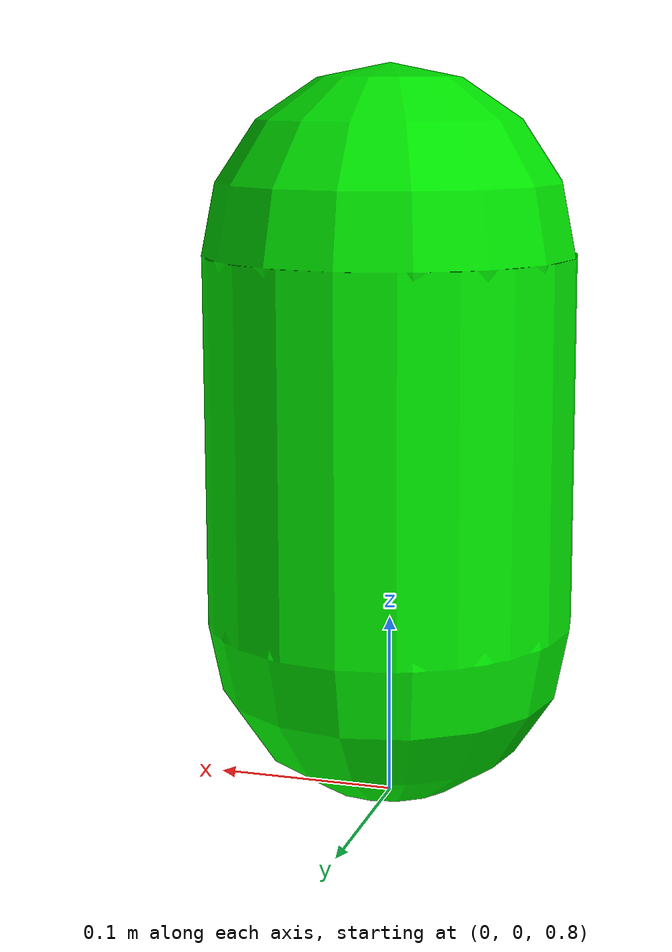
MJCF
<mujoco model="primitives">
  <include file="./common/skybox.xml"/>
  <include file="./common/visual.xml"/>
  <include file="./common/materials.xml"/>

   <worldbody>
      <light diffuse=".5 .5 .5" pos="0 0 3" dir="0 0 -1"/>
      <geom type="plane" name="floor" size="1.25 1.25 0.1" rgba=".9 0 0 1"/>
      <body pos="0 0 1.0">
        <camera name="back" pos="-3 0 1" xyaxes="0 -1 0 1 0 2" mode="trackcom"/>
         <joint type="free"/>
         <geom type="capsule" size=".1 .1 .3" rgba="0 .9 0 1"/>
      </body>
   </worldbody>
</mujoco>

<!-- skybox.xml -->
<mujoco>
    <asset>
        <texture name="skybox" type="skybox" builtin="gradient" rgb1=".4 .6 .8" rgb2="0 0 0"
                 width="800" height="800" mark="random" markrgb="1 1 1"/>
    </asset>
</mujoco>

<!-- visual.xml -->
<mujoco>
    <visual>
        <headlight ambient=".4 .4 .4" diffuse=".8 .8 .8" specular="0.1 0.1 0.1"/>
        <map znear=".01"/>
        <quality shadowsize="2048"/>
    </visual>
</mujoco>

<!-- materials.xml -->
<!--
Common textures, colors and materials to be used throughout this suite. Some
materials such as xxx_highlight are activated on occurence of certain events,
for example receiving a positive reward.
-->
<mujoco>
  <asset>
    <texture name="grid" type="2d" builtin="checker" rgb1=".1 .2 .3" rgb2=".2 .3 .4" width="300" height="300" mark="edge" markrgb=".2 .3 .4"/>
    <material name="grid" texture="grid" texrepeat="1 1" texuniform="true" reflectance=".2"/>
    <material name="self" rgba=".7 .5 .3 1"/>
    <material name="self_default" rgba=".7 .5 .3 1"/>
    <material name="self_highlight" rgba="0 .5 .3 1"/>
    <material name="effector" rgba=".7 .4 .2 1"/>
    <material name="effector_default" rgba=".7 .4 .2 1"/>
    <material name="effector_highlight" rgba="0 .5 .3 1"/>
    <material name="decoration" rgba=".3 .5 .7 1"/>
    <material name="eye" rgba="0 .2 1 1"/>
    <material name="target" rgba=".6 .3 .3 1"/>
    <material name="target_default" rgba=".6 .3 .3 1"/>
    <material name="target_highlight" rgba=".6 .3 .3 .4"/>
    <material name="site" rgba=".5 .5 .5 .3"/>
  </asset>
</mujoco>
